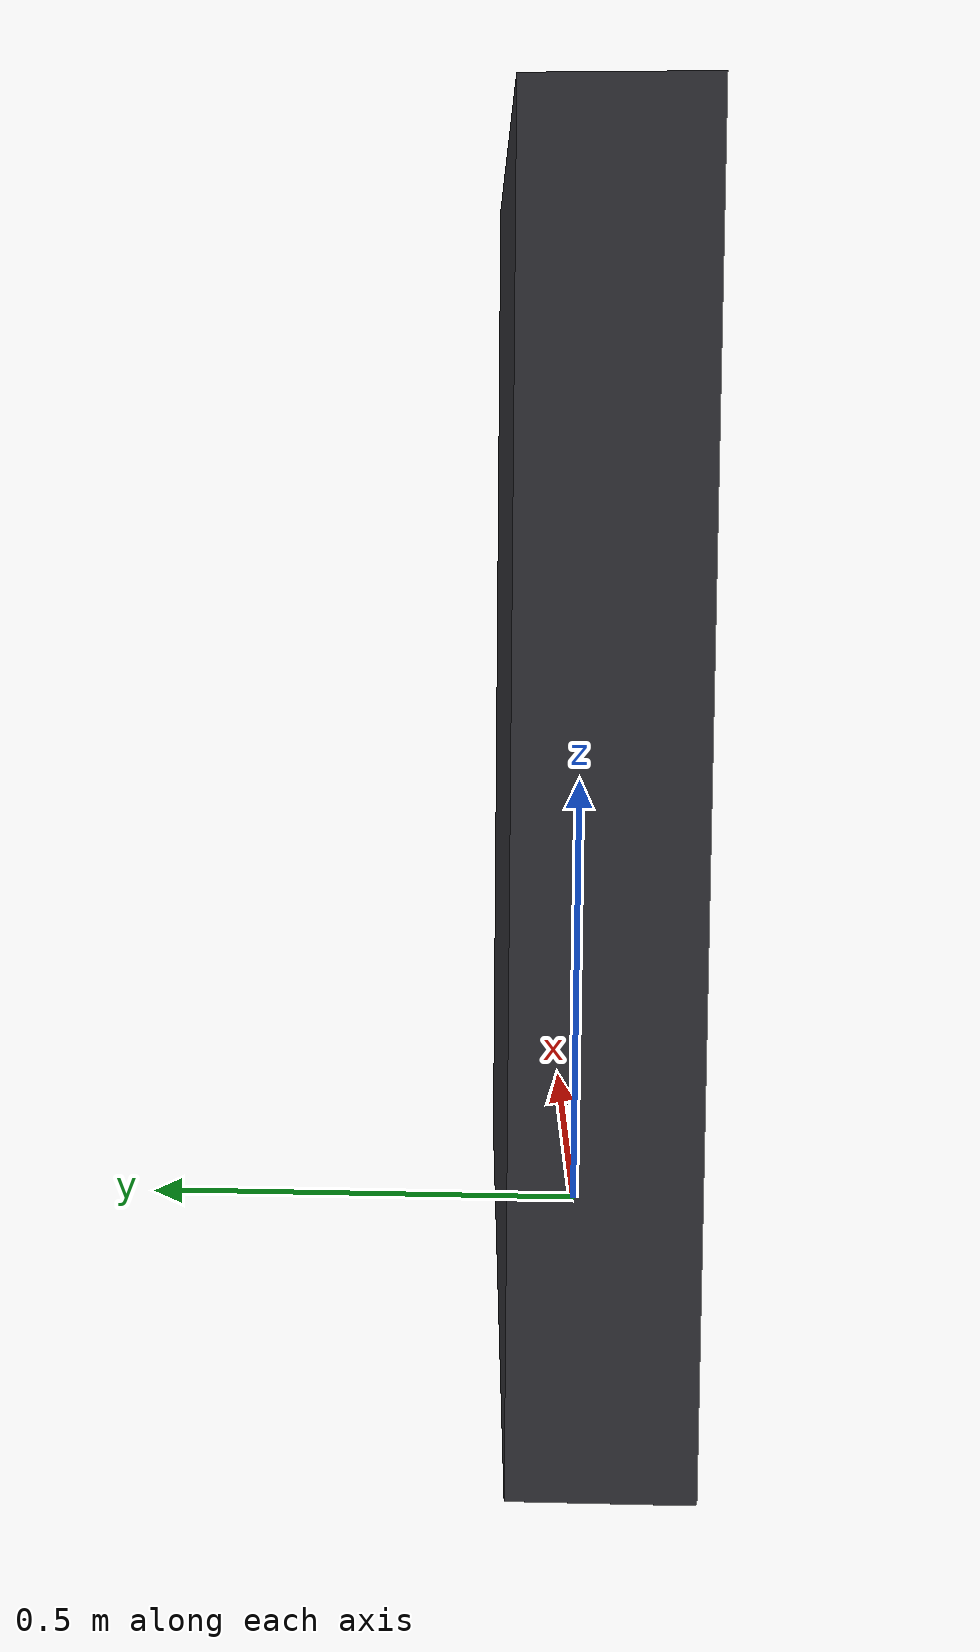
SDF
<?xml version='1.0' encoding='utf-8'?>
<sdf version="1.6">
  <model name="aws_robomaker_residential_TV_02">
    <static>true</static>
    <link name="link">
      <collision name="collision_1">
        <pose>0 0 0.55 0 0 0</pose>
        <geometry>
          <box>
            <size>1.1 0.18 1.3</size>
          </box>
        </geometry>
      </collision>
      <visual name="visual_1">
        <pose>0 0 0.55 0 0 0</pose>
        <geometry>
          <box>
            <size>1.1 0.18 1.3</size>
          </box>
        </geometry>
        <material>
          <ambient>0.18 0.18 0.2 1</ambient>
          <diffuse>0.18 0.18 0.2 1</diffuse>
          <specular>0.08 0.08 0.08 1</specular>
        </material>
      </visual>
    </link>
  </model>
</sdf>
